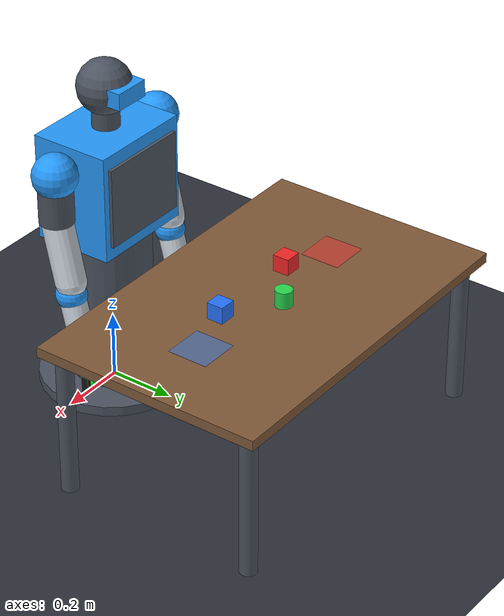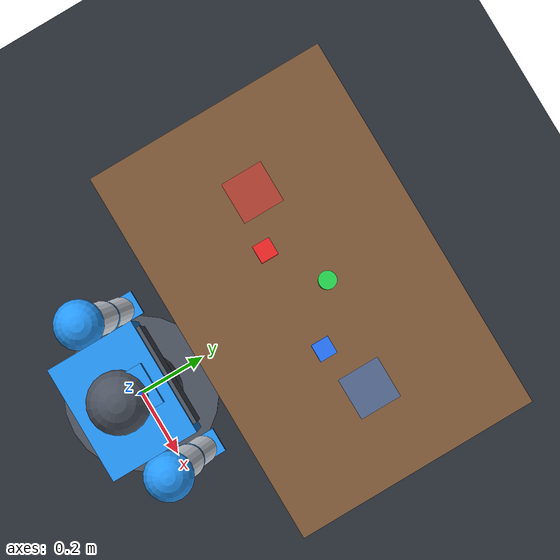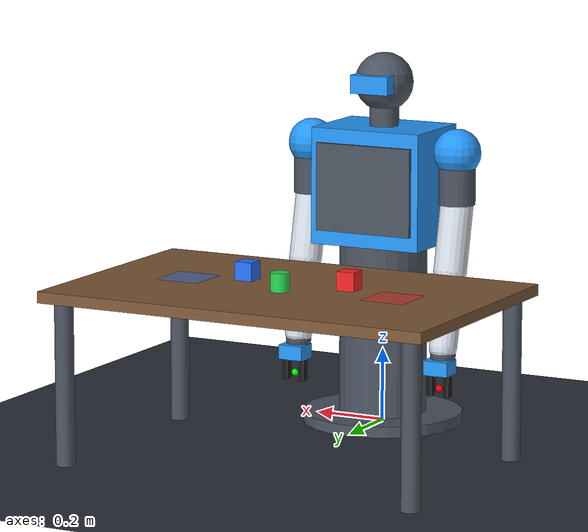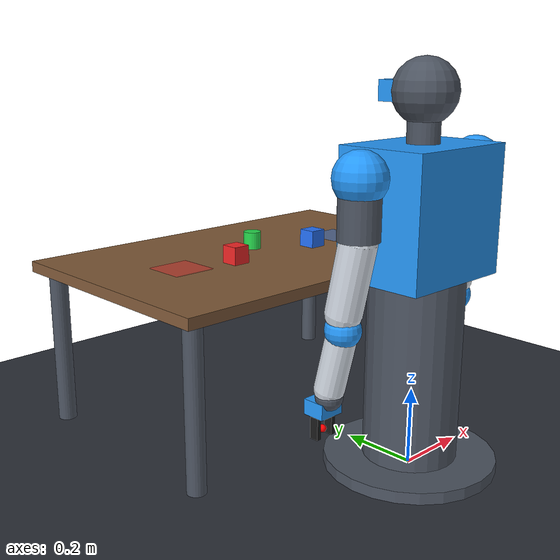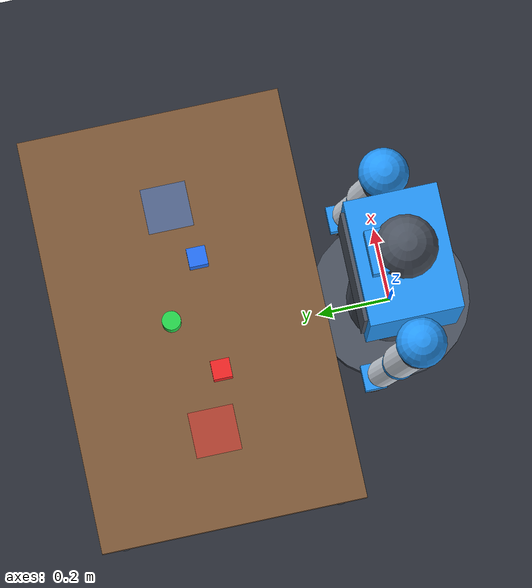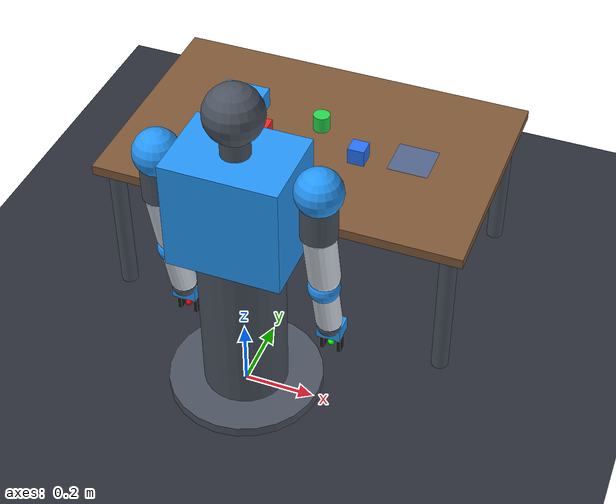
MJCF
<mujoco model="unibot_dual_arm">
  <compiler angle="radian" coordinate="local" meshdir="assets" autolimits="true"/>
  <option timestep="0.002" gravity="0 0 -9.81" iterations="50" solver="Newton" cone="elliptic" integrator="implicitfast"/>

  <visual>
    <headlight ambient="0.4 0.4 0.4" diffuse="0.8 0.8 0.8" specular="0.1 0.1 0.1"/>
    <quality shadowsize="2048"/>
    <global offwidth="640" offheight="480"/>
  </visual>

  <default>
    <joint damping="1.5" armature="0.05" frictionloss="0.05"/>
    <geom condim="4" friction="1.2 0.005 0.0001" density="500"/>
    <position kp="600" kv="0" forcelimited="false"/>
  </default>

  <asset>
    <texture type="skybox" builtin="gradient" rgb1="0.30 0.35 0.42" rgb2="0.12 0.14 0.18" width="512" height="512"/>
    <texture name="grid" type="2d" builtin="checker" width="512" height="512" rgb1="0.20 0.22 0.26" rgb2="0.14 0.15 0.18"/>
    <material name="grid_mat" texture="grid" texrepeat="8 8" reflectance="0.08" roughness="0.7"/>
    <material name="robot_metal" rgba="0.30 0.33 0.38 1.0" specular="0.8" shininess="0.7"/>
    <material name="robot_accent" rgba="0.15 0.60 0.98 1.0" specular="0.6" shininess="0.5"/>
    <material name="robot_link" rgba="0.85 0.88 0.92 1.0" specular="0.5" shininess="0.4"/>
    <material name="gripper_pad" rgba="0.10 0.10 0.10 1.0" specular="0.1" shininess="0.1"/>
    <material name="table_wood" rgba="0.50 0.35 0.22 1.0" specular="0.2" shininess="0.2"/>
    <material name="red_mat" rgba="0.95 0.15 0.15 1.0" specular="0.6" shininess="0.5"/>
    <material name="blue_mat" rgba="0.15 0.45 0.98 1.0" specular="0.6" shininess="0.5"/>
    <material name="green_mat" rgba="0.15 0.85 0.30 1.0" specular="0.6" shininess="0.5"/>
  </asset>

  <worldbody>
    <!-- Ground Floor -->
    <geom name="floor" type="plane" size="4 4 0.1" material="grid_mat"/>

    <!-- Balanced Studio Lighting -->
    <light directional="true" pos="0 0 4.5" dir="0 0 -1" diffuse="0.75 0.75 0.75" specular="0.2 0.2 0.2"/>
    <light pos="-1.5 -1.0 3.0" dir="0.5 0.5 -1" diffuse="0.45 0.45 0.50" specular="0.15 0.15 0.15"/>
    <light pos="1.5 1.0 3.0" dir="-0.5 -0.5 -1" diffuse="0.40 0.40 0.45" specular="0.15 0.15 0.15"/>

    <!-- High Surveillance Observation Cameras -->
    <camera name="cam_left_high" pos="-0.55 -0.75 1.45" xyaxes="0.8 0.6 0 -0.3 0.4 0.87" fovy="58"/>
    <camera name="cam_right_high" pos="0.55 -0.75 1.45" xyaxes="0.8 -0.6 0 0.3 0.4 0.87" fovy="58"/>

    <!-- Work Table on Floor (Top at Z = 0.465 m) -->
    <body name="work_table" pos="0 0.55 0">
      <geom name="table_top" type="box" size="0.55 0.35 0.015" pos="0 0 0.45" material="table_wood"/>
      <geom name="leg1" type="cylinder" size="0.025 0.225" pos="0.50 0.30 0.225" material="robot_metal"/>
      <geom name="leg2" type="cylinder" size="0.025 0.225" pos="-0.50 0.30 0.225" material="robot_metal"/>
      <geom name="leg3" type="cylinder" size="0.025 0.225" pos="0.50 -0.30 0.225" material="robot_metal"/>
      <geom name="leg4" type="cylinder" size="0.025 0.225" pos="-0.50 -0.30 0.225" material="robot_metal"/>
    </body>

    <!-- Manipulable Objects on Table Surface (Z = 0.49 m) -->
    <body name="red_block" pos="-0.15 0.50 0.49">
      <freejoint name="red_block_joint"/>
      <geom name="red_cube" type="box" size="0.025 0.025 0.025" material="red_mat" mass="0.08"/>
    </body>

    <body name="blue_block" pos="0.15 0.50 0.49">
      <freejoint name="blue_block_joint"/>
      <geom name="blue_cube" type="box" size="0.025 0.025 0.025" material="blue_mat" mass="0.08"/>
    </body>

    <body name="green_block" pos="0.0 0.60 0.49">
      <freejoint name="green_block_joint"/>
      <geom name="green_cylinder" type="cylinder" size="0.025 0.025" material="green_mat" mass="0.08"/>
    </body>

    <!-- Target Zones on Table -->
    <site name="target_left_zone" pos="-0.30 0.55 0.466" type="box" size="0.06 0.06 0.001" rgba="0.95 0.2 0.2 0.5"/>
    <site name="target_right_zone" pos="0.30 0.55 0.466" type="box" size="0.06 0.06 0.001" rgba="0.2 0.5 0.95 0.5"/>

    <!-- ==================== ROBOT TORSO & BASE (Grounded at Z=0) ==================== -->
    <body name="robot_base" pos="0 0 0">
      <geom name="pedestal" type="cylinder" size="0.12 0.25" pos="0 0 0.25" material="robot_metal" contype="0" conaffinity="0"/>
      <geom name="base_plate" type="cylinder" size="0.22 0.015" pos="0 0 0.015" material="robot_metal" contype="0" conaffinity="0"/>
      <geom name="torso" type="box" size="0.16 0.12 0.16" pos="0 0 0.66" material="robot_accent" contype="0" conaffinity="0"/>
      <geom name="chest_plate" type="box" size="0.14 0.09 0.12" pos="0 0.04 0.66" material="robot_metal" contype="0" conaffinity="0"/>
      <geom name="neck" type="cylinder" size="0.04 0.04" pos="0 0 0.84" material="robot_metal" contype="0" conaffinity="0"/>
      <geom name="head" type="sphere" size="0.08" pos="0 0 0.94" material="robot_metal" contype="0" conaffinity="0"/>
      <geom name="visor" type="box" size="0.055 0.035 0.025" pos="0 0.06 0.94" material="robot_accent" contype="0" conaffinity="0"/>

      <!-- ==================== LEFT ARM (7-DOF) ==================== -->
      <body name="left_shoulder_yaw" pos="-0.22 0 0.76">
        <joint name="left_j0" type="hinge" axis="0 0 1" range="-2.8 2.8"/>
        <geom name="l_sh_yaw_geom" type="sphere" size="0.065" material="robot_accent" contype="0" conaffinity="0"/>

        <body name="left_shoulder_pitch" pos="0 0 0">
          <joint name="left_j1" type="hinge" axis="1 0 0" range="-2.8 2.8"/>
          <geom name="l_sh_pitch_geom" type="cylinder" size="0.05 0.07" pos="0 0 -0.07" material="robot_metal" contype="0" conaffinity="0"/>

          <body name="left_shoulder_roll" pos="0 0 -0.14">
            <joint name="left_j2" type="hinge" axis="0 1 0" range="-2.8 2.8"/>
            <geom name="l_upper_arm" type="capsule" size="0.045" fromto="0 0 0 0 0.04 -0.18" material="robot_link" contype="0" conaffinity="0"/>

            <body name="left_elbow" pos="0 0.04 -0.22">
              <joint name="left_j3" type="hinge" axis="1 0 0" range="-2.8 2.8"/>
              <geom name="l_elb_geom" type="sphere" size="0.045" material="robot_accent" contype="0" conaffinity="0"/>

              <body name="left_forearm_yaw" pos="0 0 0">
                <joint name="left_j4" type="hinge" axis="0 0 1" range="-2.8 2.8"/>
                <geom name="l_forearm" type="capsule" size="0.038" fromto="0 0 0 0 0.04 -0.16" material="robot_link" contype="0" conaffinity="0"/>

                <body name="left_wrist_pitch" pos="0 0.04 -0.18">
                  <joint name="left_j5" type="hinge" axis="1 0 0" range="-2.8 2.8"/>
                  <geom name="l_wr_geom" type="sphere" size="0.035" material="robot_metal" contype="0" conaffinity="0"/>

                  <body name="left_wrist_roll" pos="0 0 0">
                    <joint name="left_j6" type="hinge" axis="0 1 0" range="-2.8 2.8"/>
                    <geom name="l_hand_base" type="box" size="0.035 0.03 0.02" pos="0 0.02 -0.03" material="robot_accent" contype="0" conaffinity="0"/>

                    <!-- Left Wrist Camera -->
                    <camera name="cam_left_wrist" pos="0 0.06 -0.01" xyaxes="1 0 0 0 0.5 -0.86" fovy="65"/>

                    <!-- Left End-Effector Tracking Site -->
                    <site name="left_ee" pos="0 0.02 -0.09" size="0.01" rgba="1 0 0 1"/>

                    <!-- Left Gripper Fingers -->
                    <body name="left_finger_left" pos="-0.025 0.02 -0.04">
                      <joint name="left_finger_joint1" type="slide" axis="1 0 0" range="0 0.035" damping="1.0"/>
                      <geom name="l_pad1" type="box" size="0.006 0.012 0.035" pos="0 0 -0.035" material="gripper_pad"/>
                    </body>
                    <body name="left_finger_right" pos="0.025 0.02 -0.04">
                      <joint name="left_finger_joint2" type="slide" axis="-1 0 0" range="0 0.035" damping="1.0"/>
                      <geom name="l_pad2" type="box" size="0.006 0.012 0.035" pos="0 0 -0.035" material="gripper_pad"/>
                    </body>
                  </body>
                </body>
              </body>
            </body>
          </body>
        </body>
      </body>

      <!-- ==================== RIGHT ARM (7-DOF) ==================== -->
      <body name="right_shoulder_yaw" pos="0.22 0 0.76">
        <joint name="right_j0" type="hinge" axis="0 0 1" range="-2.8 2.8"/>
        <geom name="r_sh_yaw_geom" type="sphere" size="0.065" material="robot_accent" contype="0" conaffinity="0"/>

        <body name="right_shoulder_pitch" pos="0 0 0">
          <joint name="right_j1" type="hinge" axis="1 0 0" range="-2.8 2.8"/>
          <geom name="r_sh_pitch_geom" type="cylinder" size="0.05 0.07" pos="0 0 -0.07" material="robot_metal" contype="0" conaffinity="0"/>

          <body name="right_shoulder_roll" pos="0 0 -0.14">
            <joint name="right_j2" type="hinge" axis="0 1 0" range="-2.8 2.8"/>
            <geom name="r_upper_arm" type="capsule" size="0.045" fromto="0 0 0 0 0.04 -0.18" material="robot_link" contype="0" conaffinity="0"/>

            <body name="right_elbow" pos="0 0.04 -0.22">
              <joint name="right_j3" type="hinge" axis="1 0 0" range="-2.8 2.8"/>
              <geom name="r_elb_geom" type="sphere" size="0.045" material="robot_accent" contype="0" conaffinity="0"/>

              <body name="right_forearm_yaw" pos="0 0 0">
                <joint name="right_j4" type="hinge" axis="0 0 1" range="-2.8 2.8"/>
                <geom name="r_forearm" type="capsule" size="0.038" fromto="0 0 0 0 0.04 -0.16" material="robot_link" contype="0" conaffinity="0"/>

                <body name="right_wrist_pitch" pos="0 0.04 -0.18">
                  <joint name="right_j5" type="hinge" axis="1 0 0" range="-2.8 2.8"/>
                  <geom name="r_wr_geom" type="sphere" size="0.035" material="robot_metal" contype="0" conaffinity="0"/>

                  <body name="right_wrist_roll" pos="0 0 0">
                    <joint name="right_j6" type="hinge" axis="0 1 0" range="-2.8 2.8"/>
                    <geom name="r_hand_base" type="box" size="0.035 0.03 0.02" pos="0 0.02 -0.03" material="robot_accent" contype="0" conaffinity="0"/>

                    <!-- Right Wrist Camera -->
                    <camera name="cam_right_wrist" pos="0 0.06 -0.01" xyaxes="1 0 0 0 0.5 -0.86" fovy="65"/>

                    <!-- Right End-Effector Tracking Site -->
                    <site name="right_ee" pos="0 0.02 -0.09" size="0.01" rgba="0 1 0 1"/>

                    <!-- Right Gripper Fingers -->
                    <body name="right_finger_left" pos="-0.025 0.02 -0.04">
                      <joint name="right_finger_joint1" type="slide" axis="1 0 0" range="0 0.035" damping="1.0"/>
                      <geom name="r_pad1" type="box" size="0.006 0.012 0.035" pos="0 0 -0.035" material="gripper_pad"/>
                    </body>
                    <body name="right_finger_right" pos="0.025 0.02 -0.04">
                      <joint name="right_finger_joint2" type="slide" axis="-1 0 0" range="0 0.035" damping="1.0"/>
                      <geom name="r_pad2" type="box" size="0.006 0.012 0.035" pos="0 0 -0.035" material="gripper_pad"/>
                    </body>
                  </body>
                </body>
              </body>
            </body>
          </body>
        </body>
      </body>
    </body>
  </worldbody>

  <actuator>
    <!-- Left Arm Actuators -->
    <position name="act_left_j0" joint="left_j0" ctrlrange="-2.8 2.8" kp="600" kv="40" forcerange="-250 250"/>
    <position name="act_left_j1" joint="left_j1" ctrlrange="-2.8 2.8" kp="600" kv="40" forcerange="-250 250"/>
    <position name="act_left_j2" joint="left_j2" ctrlrange="-2.8 2.8" kp="600" kv="40" forcerange="-250 250"/>
    <position name="act_left_j3" joint="left_j3" ctrlrange="-2.8 2.8" kp="500" kv="35" forcerange="-200 200"/>
    <position name="act_left_j4" joint="left_j4" ctrlrange="-2.8 2.8" kp="400" kv="30" forcerange="-150 150"/>
    <position name="act_left_j5" joint="left_j5" ctrlrange="-2.8 2.8" kp="300" kv="25" forcerange="-100 100"/>
    <position name="act_left_j6" joint="left_j6" ctrlrange="-2.8 2.8" kp="300" kv="25" forcerange="-100 100"/>

    <!-- Left Gripper Actuators -->
    <position name="act_left_finger1" joint="left_finger_joint1" ctrlrange="0 0.035" kp="80" kv="8" forcerange="-30 30"/>
    <position name="act_left_finger2" joint="left_finger_joint2" ctrlrange="0 0.035" kp="80" kv="8" forcerange="-30 30"/>

    <!-- Right Arm Actuators -->
    <position name="act_right_j0" joint="right_j0" ctrlrange="-2.8 2.8" kp="600" kv="40" forcerange="-250 250"/>
    <position name="act_right_j1" joint="right_j1" ctrlrange="-2.8 2.8" kp="600" kv="40" forcerange="-250 250"/>
    <position name="act_right_j2" joint="right_j2" ctrlrange="-2.8 2.8" kp="600" kv="40" forcerange="-250 250"/>
    <position name="act_right_j3" joint="right_j3" ctrlrange="-2.8 2.8" kp="500" kv="35" forcerange="-200 200"/>
    <position name="act_right_j4" joint="right_j4" ctrlrange="-2.8 2.8" kp="400" kv="30" forcerange="-150 150"/>
    <position name="act_right_j5" joint="right_j5" ctrlrange="-2.8 2.8" kp="300" kv="25" forcerange="-100 100"/>
    <position name="act_right_j6" joint="right_j6" ctrlrange="-2.8 2.8" kp="300" kv="25" forcerange="-100 100"/>

    <!-- Right Gripper Actuators -->
    <position name="act_right_finger1" joint="right_finger_joint1" ctrlrange="0 0.035" kp="80" kv="8" forcerange="-30 30"/>
    <position name="act_right_finger2" joint="right_finger_joint2" ctrlrange="0 0.035" kp="80" kv="8" forcerange="-30 30"/>
  </actuator>

  <sensor>
    <framepos name="left_ee_pos" objtype="site" objname="left_ee"/>
    <framequat name="left_ee_quat" objtype="site" objname="left_ee"/>
    <framepos name="right_ee_pos" objtype="site" objname="right_ee"/>
    <framequat name="right_ee_quat" objtype="site" objname="right_ee"/>
  </sensor>
</mujoco>
